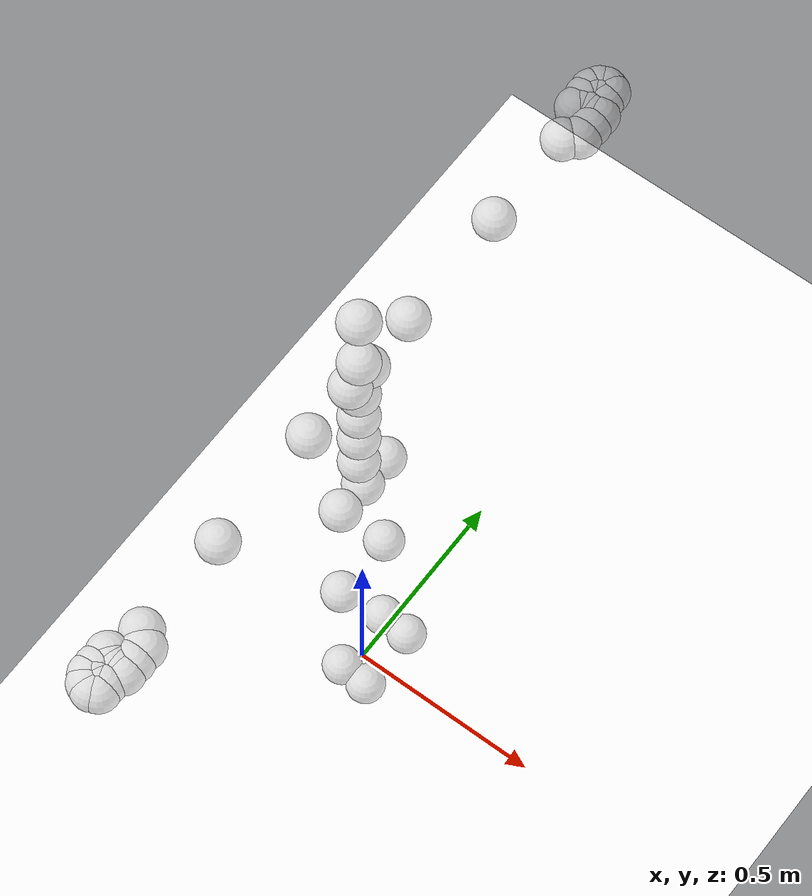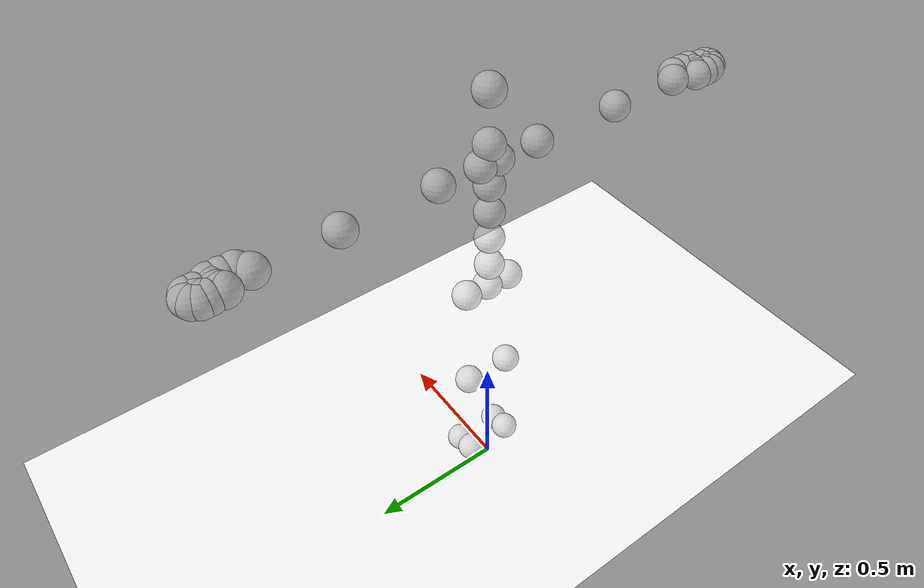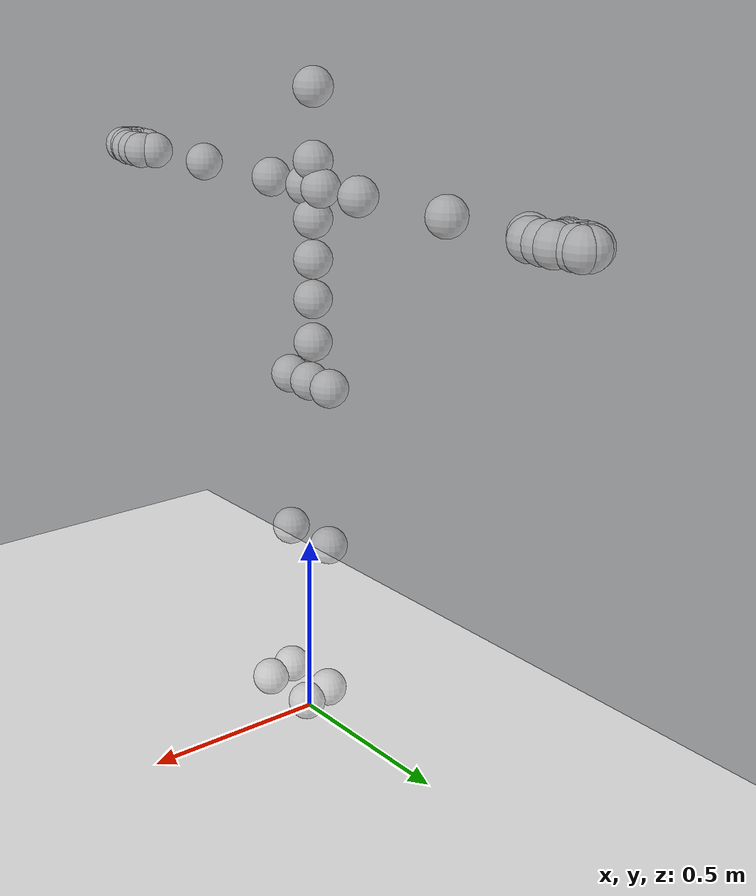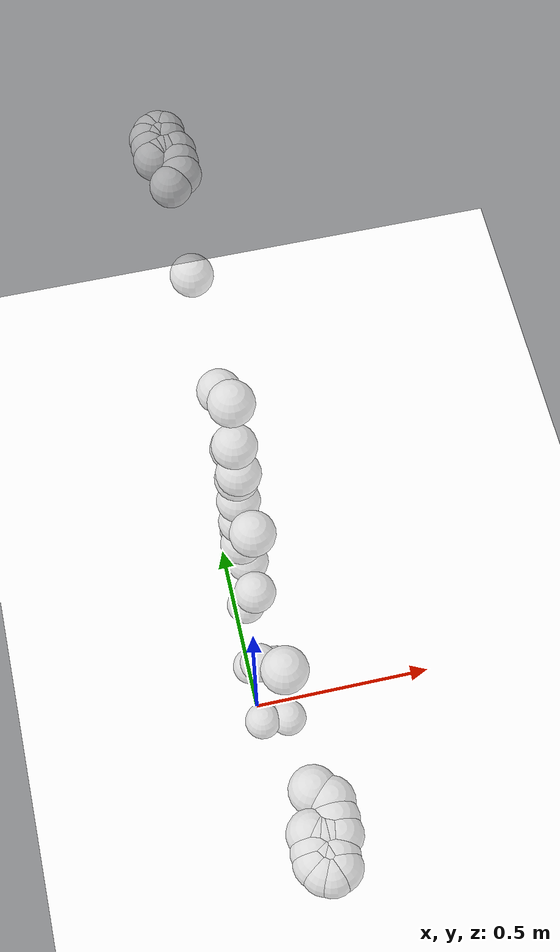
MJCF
<mujoco model="human_skeleton">
  <compiler angle="degree" coordinate="local"/>
  <option gravity="0 0 -9.81"/>
  <worldbody>
    <body name="Hips" pos="0.000000 0.000000 0.954660">
      <joint name="floating_base_joint" type="free" limited="false" actuatorfrclimited="false"/>
      <geom type="sphere" size="0.05" rgba="0.8 0.8 0.8 0.5"/>
      <body name="Chest" pos="-0.011335 0.000000 0.102018">
        <joint type="ball" name="Chest_joint"/>
        <geom type="sphere" size="0.05" rgba="0.8 0.8 0.8 0.5"/>
        <body name="Chest2" pos="0.000000 0.000000 0.113281">
          <joint type="ball" name="Chest2_joint"/>
          <geom type="sphere" size="0.05" rgba="0.8 0.8 0.8 0.5"/>
          <body name="Chest3" pos="-0.000012 0.000000 0.103427">
            <joint type="ball" name="Chest3_joint"/>
            <geom type="sphere" size="0.05" rgba="0.8 0.8 0.8 0.5"/>
            <body name="Chest4" pos="-0.000012 0.000000 0.103311">
              <joint type="ball" name="Chest4_joint"/>
              <geom type="sphere" size="0.05" rgba="0.8 0.8 0.8 0.5"/>
              <body name="Neck" pos="0.000000 0.000000 0.144629">
                <joint type="ball" name="Neck_joint"/>
                <geom type="sphere" size="0.05" rgba="0.8 0.8 0.8 0.5"/>
                <body name="Head" pos="0.000004 0.000000 0.178569">
                  <joint type="ball" name="Head_joint"/>
                  <geom type="sphere" size="0.05" rgba="0.8 0.8 0.8 0.5"/>
                </body>
              </body>
              <body name="RightCollar" pos="0.000000 -0.031491 0.081079">
                <joint type="ball" name="RightCollar_joint"/>
                <geom type="sphere" size="0.05" rgba="0.8 0.8 0.8 0.5"/>
                <body name="RightShoulder" pos="0.000000 -0.147266 0.000000">
                  <joint type="ball" name="RightShoulder_joint"/>
                  <geom type="sphere" size="0.05" rgba="0.8 0.8 0.8 0.5"/>
                  <body name="RightElbow" pos="0.000000 -0.314897 0.000000">
                    <joint type="ball" name="RightElbow_joint"/>
                    <geom type="sphere" size="0.05" rgba="0.8 0.8 0.8 0.5"/>
                    <body name="RightWrist" pos="0.000000 -0.257483 0.000000">
                      <joint type="ball" name="RightWrist_joint"/>
                      <geom type="sphere" size="0.05" rgba="0.8 0.8 0.8 0.5"/>
                      <body name="RightFinger0" pos="0.028392 -0.028813 0.000000">
                        <joint type="ball" name="RightFinger0_joint"/>
                        <geom type="sphere" size="0.05" rgba="0.8 0.8 0.8 0.5"/>
                        <body name="RightFinger01" pos="0.000000 -0.037259 0.000000">
                          <joint type="ball" name="RightFinger01_joint"/>
                          <geom type="sphere" size="0.05" rgba="0.8 0.8 0.8 0.5"/>
                          <body name="RightFinger02" pos="0.000000 -0.032704 0.000000">
                            <joint type="ball" name="RightFinger02_joint"/>
                            <geom type="sphere" size="0.05" rgba="0.8 0.8 0.8 0.5"/>
                          </body>
                        </body>
                      </body>
                      <body name="RightFinger1" pos="0.012724 -0.096272 0.000000">
                        <joint type="ball" name="RightFinger1_joint"/>
                        <geom type="sphere" size="0.05" rgba="0.8 0.8 0.8 0.5"/>
                        <body name="RightFinger11" pos="0.000000 -0.043535 0.000000">
                          <joint type="ball" name="RightFinger11_joint"/>
                          <geom type="sphere" size="0.05" rgba="0.8 0.8 0.8 0.5"/>
                          <body name="RightFinger12" pos="0.000000 -0.021347 0.000000">
                            <joint type="ball" name="RightFinger12_joint"/>
                            <geom type="sphere" size="0.05" rgba="0.8 0.8 0.8 0.5"/>
                          </body>
                        </body>
                      </body>
                      <body name="RightFinger2" pos="0.000000 -0.096429 0.000000">
                        <joint type="ball" name="RightFinger2_joint"/>
                        <geom type="sphere" size="0.05" rgba="0.8 0.8 0.8 0.5"/>
                        <body name="RightFinger21" pos="0.000000 -0.047636 0.000000">
                          <joint type="ball" name="RightFinger21_joint"/>
                          <geom type="sphere" size="0.05" rgba="0.8 0.8 0.8 0.5"/>
                          <body name="RightFinger22" pos="0.000000 -0.022399 0.000000">
                            <joint type="ball" name="RightFinger22_joint"/>
                            <geom type="sphere" size="0.05" rgba="0.8 0.8 0.8 0.5"/>
                          </body>
                        </body>
                      </body>
                      <body name="RightFinger3" pos="-0.012829 -0.092742 0.000000">
                        <joint type="ball" name="RightFinger3_joint"/>
                        <geom type="sphere" size="0.05" rgba="0.8 0.8 0.8 0.5"/>
                        <body name="RightFinger31" pos="0.000000 -0.045218 0.000000">
                          <joint type="ball" name="RightFinger31_joint"/>
                          <geom type="sphere" size="0.05" rgba="0.8 0.8 0.8 0.5"/>
                          <body name="RightFinger32" pos="0.000000 -0.022609 0.000000">
                            <joint type="ball" name="RightFinger32_joint"/>
                            <geom type="sphere" size="0.05" rgba="0.8 0.8 0.8 0.5"/>
                          </body>
                        </body>
                      </body>
                      <body name="RightFinger4" pos="-0.022924 -0.085173 0.000000">
                        <joint type="ball" name="RightFinger4_joint"/>
                        <geom type="sphere" size="0.05" rgba="0.8 0.8 0.8 0.5"/>
                        <body name="RightFinger41" pos="0.000000 -0.037751 0.000000">
                          <joint type="ball" name="RightFinger41_joint"/>
                          <geom type="sphere" size="0.05" rgba="0.8 0.8 0.8 0.5"/>
                          <body name="RightFinger42" pos="0.000000 -0.021768 0.000000">
                            <joint type="ball" name="RightFinger42_joint"/>
                            <geom type="sphere" size="0.05" rgba="0.8 0.8 0.8 0.5"/>
                          </body>
                        </body>
                      </body>
                    </body>
                  </body>
                </body>
              </body>
              <body name="LeftCollar" pos="0.000000 0.031491 0.081079">
                <joint type="ball" name="LeftCollar_joint"/>
                <geom type="sphere" size="0.05" rgba="0.8 0.8 0.8 0.5"/>
                <body name="LeftShoulder" pos="0.000000 0.147266 0.000000">
                  <joint type="ball" name="LeftShoulder_joint"/>
                  <geom type="sphere" size="0.05" rgba="0.8 0.8 0.8 0.5"/>
                  <body name="LeftElbow" pos="0.000000 0.314897 0.000000">
                    <joint type="ball" name="LeftElbow_joint"/>
                    <geom type="sphere" size="0.05" rgba="0.8 0.8 0.8 0.5"/>
                    <body name="LeftWrist" pos="0.000000 0.257483 0.000000">
                      <joint type="ball" name="LeftWrist_joint"/>
                      <geom type="sphere" size="0.05" rgba="0.8 0.8 0.8 0.5"/>
                      <body name="LeftFinger0" pos="0.028392 0.028813 0.000000">
                        <joint type="ball" name="LeftFinger0_joint"/>
                        <geom type="sphere" size="0.05" rgba="0.8 0.8 0.8 0.5"/>
                        <body name="LeftFinger01" pos="0.000000 0.037259 0.000000">
                          <joint type="ball" name="LeftFinger01_joint"/>
                          <geom type="sphere" size="0.05" rgba="0.8 0.8 0.8 0.5"/>
                          <body name="LeftFinger02" pos="0.000000 0.032704 0.000000">
                            <joint type="ball" name="LeftFinger02_joint"/>
                            <geom type="sphere" size="0.05" rgba="0.8 0.8 0.8 0.5"/>
                          </body>
                        </body>
                      </body>
                      <body name="LeftFinger1" pos="0.012724 0.096272 0.000000">
                        <joint type="ball" name="LeftFinger1_joint"/>
                        <geom type="sphere" size="0.05" rgba="0.8 0.8 0.8 0.5"/>
                        <body name="LeftFinger11" pos="0.000000 0.043535 0.000000">
                          <joint type="ball" name="LeftFinger11_joint"/>
                          <geom type="sphere" size="0.05" rgba="0.8 0.8 0.8 0.5"/>
                          <body name="LeftFinger12" pos="0.000000 0.021347 0.000000">
                            <joint type="ball" name="LeftFinger12_joint"/>
                            <geom type="sphere" size="0.05" rgba="0.8 0.8 0.8 0.5"/>
                          </body>
                        </body>
                      </body>
                      <body name="LeftFinger2" pos="0.000000 0.096429 0.000000">
                        <joint type="ball" name="LeftFinger2_joint"/>
                        <geom type="sphere" size="0.05" rgba="0.8 0.8 0.8 0.5"/>
                        <body name="LeftFinger21" pos="0.000000 0.047636 0.000000">
                          <joint type="ball" name="LeftFinger21_joint"/>
                          <geom type="sphere" size="0.05" rgba="0.8 0.8 0.8 0.5"/>
                          <body name="LeftFinger22" pos="0.000000 0.022399 0.000000">
                            <joint type="ball" name="LeftFinger22_joint"/>
                            <geom type="sphere" size="0.05" rgba="0.8 0.8 0.8 0.5"/>
                          </body>
                        </body>
                      </body>
                      <body name="LeftFinger3" pos="-0.012829 0.092742 0.000000">
                        <joint type="ball" name="LeftFinger3_joint"/>
                        <geom type="sphere" size="0.05" rgba="0.8 0.8 0.8 0.5"/>
                        <body name="LeftFinger31" pos="0.000000 0.045218 0.000000">
                          <joint type="ball" name="LeftFinger31_joint"/>
                          <geom type="sphere" size="0.05" rgba="0.8 0.8 0.8 0.5"/>
                          <body name="LeftFinger32" pos="0.000000 0.022609 0.000000">
                            <joint type="ball" name="LeftFinger32_joint"/>
                            <geom type="sphere" size="0.05" rgba="0.8 0.8 0.8 0.5"/>
                          </body>
                        </body>
                      </body>
                      <body name="LeftFinger4" pos="-0.022924 0.085173 0.000000">
                        <joint type="ball" name="LeftFinger4_joint"/>
                        <geom type="sphere" size="0.05" rgba="0.8 0.8 0.8 0.5"/>
                        <body name="LeftFinger41" pos="0.000000 0.037751 0.000000">
                          <joint type="ball" name="LeftFinger41_joint"/>
                          <geom type="sphere" size="0.05" rgba="0.8 0.8 0.8 0.5"/>
                          <body name="LeftFinger42" pos="0.000000 0.021768 0.000000">
                            <joint type="ball" name="LeftFinger42_joint"/>
                            <geom type="sphere" size="0.05" rgba="0.8 0.8 0.8 0.5"/>
                          </body>
                        </body>
                      </body>
                    </body>
                  </body>
                </body>
              </body>
            </body>
          </body>
        </body>
      </body>
      <body name="RightHip" pos="-0.000005 -0.083928 0.000042">
        <joint type="ball" name="RightHip_joint"/>
        <geom type="sphere" size="0.05" rgba="0.8 0.8 0.8 0.5"/>
        <body name="RightKnee" pos="-0.000003 0.000000 -0.434494">
          <joint type="ball" name="RightKnee_joint"/>
          <geom type="sphere" size="0.05" rgba="0.8 0.8 0.8 0.5"/>
          <body name="RightAnkle" pos="-0.000005 0.000000 -0.424439">
            <joint type="ball" name="RightAnkle_joint"/>
            <geom type="sphere" size="0.05" rgba="0.8 0.8 0.8 0.5"/>
            <body name="RightToe" pos="0.072387 0.000000 -0.016574">
              <joint type="ball" name="RightToe_joint"/>
              <geom type="sphere" size="0.05" rgba="0.8 0.8 0.8 0.5"/>
            </body>
          </body>
        </body>
      </body>
      <body name="LeftHip" pos="-0.000002 0.083928 0.000019">
        <joint type="ball" name="LeftHip_joint"/>
        <geom type="sphere" size="0.05" rgba="0.8 0.8 0.8 0.5"/>
        <body name="LeftKnee" pos="-0.000003 0.000000 -0.434494">
          <joint type="ball" name="LeftKnee_joint"/>
          <geom type="sphere" size="0.05" rgba="0.8 0.8 0.8 0.5"/>
          <body name="LeftAnkle" pos="-0.000005 0.000000 -0.424439">
            <joint type="ball" name="LeftAnkle_joint"/>
            <geom type="sphere" size="0.05" rgba="0.8 0.8 0.8 0.5"/>
            <body name="LeftToe" pos="0.072387 0.000000 -0.016574">
              <joint type="ball" name="LeftToe_joint"/>
              <geom type="sphere" size="0.05" rgba="0.8 0.8 0.8 0.5"/>
            </body>
          </body>
        </body>
      </body>
    </body>
  </worldbody>

    <!-- setup scene -->
  !-- setup scene -->
  <statistic center="1.0 0.7 1.0" extent="0.8"/>
    <visual>
        <headlight diffuse="0.6 0.6 0.6" ambient="0.1 0.1 0.1" specular="0.9 0.9 0.9"/>
        <rgba haze="0.15 0.25 0.35 1"/>
        <global azimuth="-140" elevation="-20" offwidth="2080" offheight="1170"/>
    </visual>
    <asset>
         <texture type="skybox" builtin="gradient" rgb1="1 1 1" rgb2="1 1 1" width="800" height="800"/>
    <texture type="2d" name="groundplane" builtin="checker" mark="edge" rgb1="1 1 1" rgb2="1 1 1" markrgb="0 0 0"
      width="300" height="300"/>
    <material name="groundplane" texture="groundplane" texuniform="true" texrepeat="5 5" reflectance="0"/>
        <texture type="skybox" builtin="gradient" rgb1=".4 .5 .6" rgb2="0 0 0" width="100" height="100"/>
        <texture builtin="flat" height="1278" mark="cross" markrgb="1 1 1" name="texgeom" random="0.01" rgb1="0.8 0.6 0.4" rgb2="0.8 0.6 0.4" type="cube" width="127"/>
        <texture name="texplane" builtin="checker" height="512" width="512" rgb1=".2 .3 .4" rgb2=".1 .15 .2" type="2d" />
        <material name="MatPlane" reflectance="0.5" shininess="0.01" specular="0.1" texrepeat="1 1" texture="texplane" texuniform="true" />
        <material name="geom" texture="texgeom" texuniform="true"/>
    </asset>
    <worldbody>
        <geom name="floor" size="0 0 0.01" type="plane" material="groundplane" contype="1" conaffinity="0" priority="1"
      friction="0.6" condim="3"/>

          <light diffuse=".5 .5 .5" pos="-3 -3 5" dir="3 3 -5" castshadow="true"/>

    </worldbody>

</mujoco>
